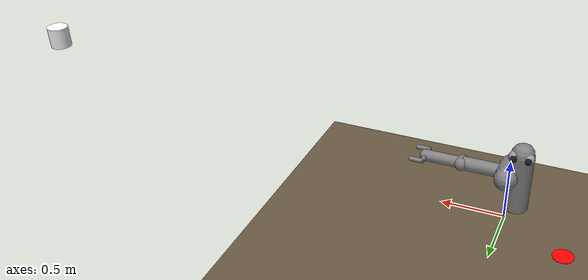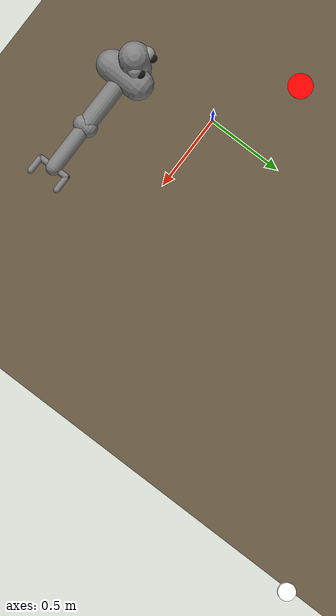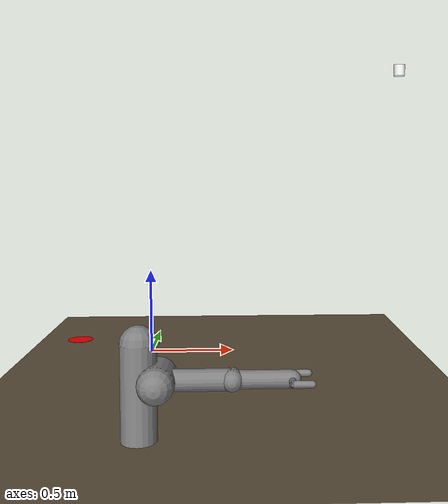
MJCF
<mujoco model="arm3d">
    <compiler inertiafromgeom="true" angle="radian" coordinate="local" />
    <option timestep="0.01" gravity="0 0 0" iterations="20" integrator="Euler" />

    <default>
        <joint armature='0.04' damping="1" limited="true"/>
        <geom  friction=".8 .1 .1" density="300" margin="0.002" condim="1" contype="0" conaffinity="0"/>
    </default>

    <worldbody>
        <light diffuse="1 1 1" pos="0 0 3" dir="0 0 -1"/>

        <geom rgba=".40 .34 .25 1" type="plane" pos="0 0.5 -0.325" size="2 2 0.1" contype="1" conaffinity="1"/>

        <body name="r_shoulder_pan_link" pos="0 -0.6 0">
            <geom name="e1" type="sphere" rgba="0.6 0.6 0.6 1" pos="-0.06 0.05 0.2" size="0.05" />
            <geom name="e2" type="sphere" rgba="0.6 0.6 0.6 1" pos=" 0.06 0.05 0.2" size="0.05" />
            <geom name="e1p" type="sphere" rgba="0.1 0.1 0.1 1" pos="-0.06 0.09 0.2" size="0.03" />
            <geom name="e2p" type="sphere" rgba="0.1 0.1 0.1 1" pos=" 0.06 0.09 0.2" size="0.03" />
            <geom name="sp" type="capsule" fromto="0 0 -0.4 0 0 0.2" size="0.1" />
            <joint name="r_shoulder_pan_joint" type="hinge" pos="0 0 0" axis="0 0 1" range="-2.2854 1.714602" damping="1.0" />

            <body name="r_shoulder_lift_link" pos="0.1 0 0">
                <geom name="sl" type="capsule" fromto="0 -0.1 0 0 0.1 0" size="0.1" />
                <joint name="r_shoulder_lift_joint" type="hinge" pos="0 0 0" axis="0 1 0" range="-0.5236 1.3963" damping="1.0" />

                <body name="r_upper_arm_roll_link" pos="0 0 0">
                    <geom name="uar" type="capsule" fromto="-0.1 0 0 0.1 0 0" size="0.02" />
                    <joint name="r_upper_arm_roll_joint" type="hinge" pos="0 0 0" axis="1 0 0" range="-1.5 1.7" damping="0.1" />

                    <body name="r_upper_arm_link" pos="0 0 0">
                        <geom name="ua" type="capsule" fromto="0 0 0 0.4 0 0" size="0.06" />

                        <body name="r_elbow_flex_link" pos="0.4 0 0">
                            <geom name="ef" type="capsule" fromto="0 -0.02 0 0.0 0.02 0" size="0.06" />
                            <joint name="r_elbow_flex_joint" type="hinge" pos="0 0 0" axis="0 1 0" range="-2.3213 0" damping="0.1" />

                            <body name="r_forearm_roll_link" pos="0 0 0">
                                <geom name="fr" type="capsule" fromto="-0.1 0 0 0.1 0 0" size="0.02" />
                                <joint name="r_forearm_roll_joint" type="hinge" limited="true" pos="0 0 0" axis="1 0 0" damping=".1" range="-1.5 1.5"/>

                                <body name="r_forearm_link" pos="0 0 0">
                                    <geom name="fa" type="capsule" fromto="0 0 0 0.321 0 0" size="0.05" />

                                    <body name="r_wrist_flex_link" pos="0.321 0 0">
                                        <geom name="wf" type="capsule" fromto="0 -0.02 0 0 0.02 0" size="0.01" />
                                        <joint name="r_wrist_flex_joint" type="hinge" pos="0 0 0" axis="0 1 0" range="-1.094 0" damping=".1" />

                                        <body name="r_wrist_roll_link" pos="0 0 0">
                                            <geom name="wr" type="capsule" fromto="-0.02 0 0 0.02 0 0" size="0.01" />
                                            <joint name="r_wrist_roll_joint" type="hinge" pos="0 0 0" limited="true" axis="1 0 0" damping="0.1" range="-1.5 1.5"/>

                                            <site name="tip arml" pos="0.1 -0.1 0." size="0.01" />
                                            <site name="tip armr" pos="0.1 0.1 0." size="0.01" />
                                            <geom type="capsule" fromto="0 -0.1 0. 0.0 +0.1 0" size="0.02" contype="1" conaffinity="1" />
                                            <geom type="capsule" fromto="0 -0.1 0. 0.1 -0.1 0" size="0.02" contype="1" conaffinity="1" />
                                            <geom type="capsule" fromto="0 +0.1 0. 0.1 +0.1 0." size="0.02" contype="1" conaffinity="1" />

                                        </body>
                                    </body>
                                </body>
                            </body>
                        </body>
                    </body>
                </body>
            </body>
        </body>

        <body name="object" pos="2.0 2.0 2.0">
            <geom rgba="1. 1. 1. 1" type="cylinder" size="0.05 0.05 0.1" density='0.00001' contype="1" conaffinity="1"/>
            <joint name="obj_slidey" type="slide" pos="0.01 0.01 0.01" axis="0 1 0" range="-10.3213 10.3" damping="0.5"/>
            <joint name="obj_slidex" type="slide" pos="0.01 0.01 0.01" axis="1 0 0" range="-10.3213 10.3" damping="0.5"/>
        </body>

        <body name="goal" pos="-0.5 0.3 0">
            <geom rgba="1. 0. 0. 1" type="cylinder" size="0.08 0.001 0.1" density='0.00001' contype="0" conaffinity="0"/>
            <joint name="goal_slidey" type="slide" pos="0 0 0" axis="0 1 0" range="-10.3213 10.3" damping="0.5"/>
            <joint name="goal_slidex" type="slide" pos="0 0 0" axis="1 0 0" range="-10.3213 10.3" damping="0.5"/>
        </body>

    </worldbody>

    <actuator>
        <motor joint="r_shoulder_pan_joint" ctrlrange="-2.0 2.0" ctrllimited="true" />
        <motor joint="r_shoulder_lift_joint" ctrlrange="-2.0 2.0" ctrllimited="true" />
        <motor joint="r_upper_arm_roll_joint" ctrlrange="-2.0 2.0" ctrllimited="true" />
        <motor joint="r_elbow_flex_joint" ctrlrange="-2.0 2.0" ctrllimited="true" />
        <motor joint="r_forearm_roll_joint" ctrlrange="-2.0 2.0" ctrllimited="true" />
        <motor joint="r_wrist_flex_joint" ctrlrange="-2.0 2.0" ctrllimited="true" />
        <motor joint="r_wrist_roll_joint" ctrlrange="-2.0 2.0" ctrllimited="true"/>
    </actuator>

</mujoco>
